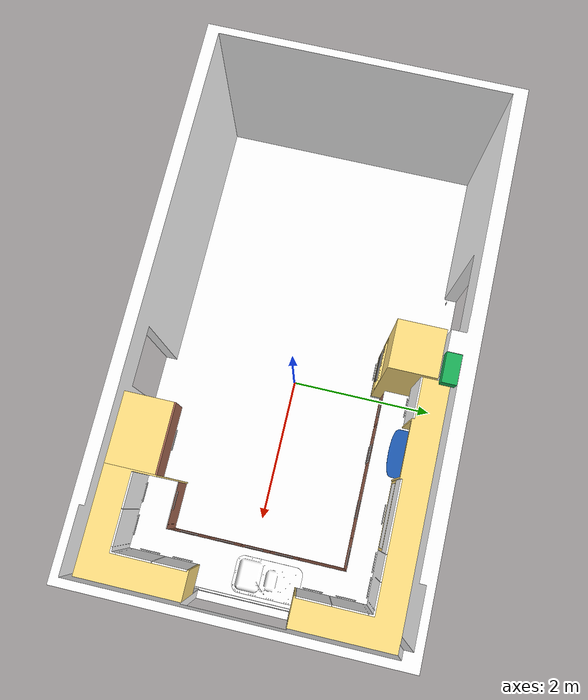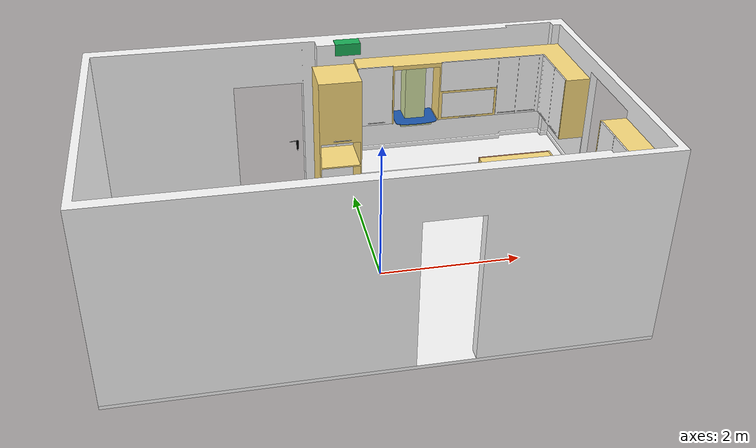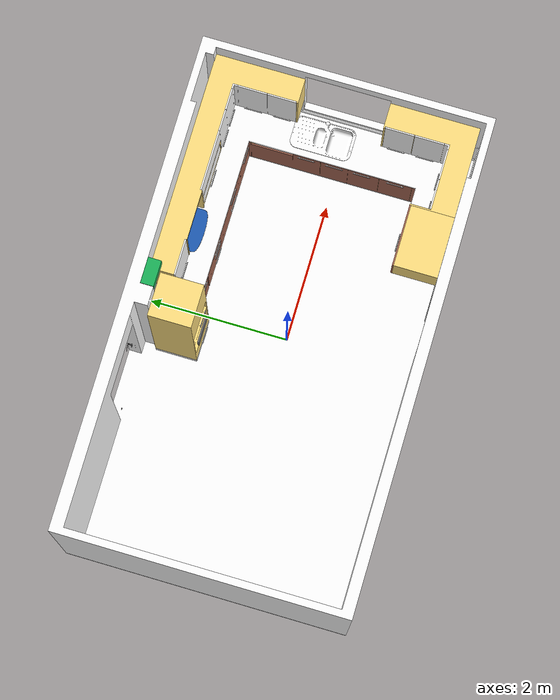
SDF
<sdf version="1.6">
 <world name="default">
  <gravity>0 0 -9.8</gravity>
  <model name="part0.obj">
   <static>1</static>
   <pose>-12.0 -13.9 0 0 0 0</pose>
   <link name="link_d0">
    <inertial>
     <mass>0</mass>
     <inertia>
      <ixx>0.166667</ixx>
      <ixy>0</ixy>
      <ixz>0</ixz>
      <iyy>0.166667</iyy>
      <iyz>0</iyz>
      <izz>0.166667</izz>
     </inertia>
    </inertial>
    <collision concave="yes" name="collision_0">
     <geometry><mesh><scale>.1 .1 .1</scale><uri>fatihrmutfak/part0.obj</uri></mesh></geometry>
    </collision>
    <visual name="visual">
     <geometry><mesh><scale>.1 .1 .1</scale><uri>fatihrmutfak/part0.obj</uri></mesh></geometry>
     <material>
      <ambient>1 0 0 1</ambient>
      <diffuse>0.109800 0.349000 0.694100 1</diffuse>
      <specular>0.1 0.1 0.1 1</specular>
      <emissive>0 0 0 0</emissive>
     </material>
    </visual>
   </link>
  </model>
  <model name="part1.obj">
   <static>1</static>
   <pose>-12.0 -13.9 0 0 0 0</pose>
   <link name="link_d1">
    <inertial>
     <mass>0</mass>
     <inertia>
      <ixx>0.166667</ixx>
      <ixy>0</ixy>
      <ixz>0</ixz>
      <iyy>0.166667</iyy>
      <iyz>0</iyz>
      <izz>0.166667</izz>
     </inertia>
    </inertial>
    <collision concave="yes" name="collision_1">
     <geometry><mesh><scale>.1 .1 .1</scale><uri>fatihrmutfak/part1.obj</uri></mesh></geometry>
    </collision>
    <visual name="visual">
     <geometry><mesh><scale>.1 .1 .1</scale><uri>fatihrmutfak/part1.obj</uri></mesh></geometry>
     <material>
      <ambient>1 0 0 1</ambient>
      <diffuse>0.839200 0.898000 0.651000 1</diffuse>
      <specular>0.1 0.1 0.1 1</specular>
      <emissive>0 0 0 0</emissive>
     </material>
    </visual>
   </link>
  </model>
  <model name="part10.obj">
   <static>1</static>
   <pose>-12.0 -13.9 0 0 0 0</pose>
   <link name="link_d10">
    <inertial>
     <mass>0</mass>
     <inertia>
      <ixx>0.166667</ixx>
      <ixy>0</ixy>
      <ixz>0</ixz>
      <iyy>0.166667</iyy>
      <iyz>0</iyz>
      <izz>0.166667</izz>
     </inertia>
    </inertial>
    <collision concave="yes" name="collision_10">
     <geometry><mesh><scale>.1 .1 .1</scale><uri>fatihrmutfak/part10.obj</uri></mesh></geometry>
    </collision>
    <visual name="visual">
     <geometry><mesh><scale>.1 .1 .1</scale><uri>fatihrmutfak/part10.obj</uri></mesh></geometry>
     <material>
      <ambient>1 0 0 1</ambient>
      <diffuse>0.058800 0.058800 0.058800 1</diffuse>
      <specular>0.1 0.1 0.1 1</specular>
      <emissive>0 0 0 0</emissive>
     </material>
    </visual>
   </link>
  </model>
  <model name="part11.obj">
   <static>1</static>
   <pose>-12.0 -13.9 0 0 0 0</pose>
   <link name="link_d11">
    <inertial>
     <mass>0</mass>
     <inertia>
      <ixx>0.166667</ixx>
      <ixy>0</ixy>
      <ixz>0</ixz>
      <iyy>0.166667</iyy>
      <iyz>0</iyz>
      <izz>0.166667</izz>
     </inertia>
    </inertial>
    <collision concave="yes" name="collision_11">
     <geometry><mesh><scale>.1 .1 .1</scale><uri>fatihrmutfak/part11.obj</uri></mesh></geometry>
    </collision>
    <visual name="visual">
     <geometry><mesh><scale>.1 .1 .1</scale><uri>fatihrmutfak/part11.obj</uri></mesh></geometry>
     <material>
      <ambient>1 0 0 1</ambient>
      <diffuse>0.058800 0.058800 0.058800 1</diffuse>
      <specular>0.1 0.1 0.1 1</specular>
      <emissive>0 0 0 0</emissive>
     </material>
    </visual>
   </link>
  </model>
  <model name="part12.obj">
   <static>1</static>
   <pose>-12.0 -13.9 0 0 0 0</pose>
   <link name="link_d12">
    <inertial>
     <mass>0</mass>
     <inertia>
      <ixx>0.166667</ixx>
      <ixy>0</ixy>
      <ixz>0</ixz>
      <iyy>0.166667</iyy>
      <iyz>0</iyz>
      <izz>0.166667</izz>
     </inertia>
    </inertial>
    <collision concave="yes" name="collision_12">
     <geometry><mesh><scale>.1 .1 .1</scale><uri>fatihrmutfak/part12.obj</uri></mesh></geometry>
    </collision>
    <visual name="visual">
     <geometry><mesh><scale>.1 .1 .1</scale><uri>fatihrmutfak/part12.obj</uri></mesh></geometry>
     <material>
      <ambient>1 0 0 1</ambient>
      <diffuse>0.058800 0.058800 0.058800 1</diffuse>
      <specular>0.1 0.1 0.1 1</specular>
      <emissive>0 0 0 0</emissive>
     </material>
    </visual>
   </link>
  </model>
  <model name="part100.obj">
   <static>1</static>
   <pose>-12.0 -13.9 0 0 0 0</pose>
   <link name="link_d100">
    <inertial>
     <mass>0</mass>
     <inertia>
      <ixx>0.166667</ixx>
      <ixy>0</ixy>
      <ixz>0</ixz>
      <iyy>0.166667</iyy>
      <iyz>0</iyz>
      <izz>0.166667</izz>
     </inertia>
    </inertial>
    <collision concave="yes" name="collision_100">
     <geometry><mesh><scale>.1 .1 .1</scale><uri>fatihrmutfak/part100.obj</uri></mesh></geometry>
    </collision>
    <visual name="visual">
     <geometry><mesh><scale>.1 .1 .1</scale><uri>fatihrmutfak/part100.obj</uri></mesh></geometry>
     <material>
      <ambient>1 0 0 1</ambient>
      <diffuse>0.000000 0.000000 0.000000 1</diffuse>
      <specular>0.1 0.1 0.1 1</specular>
      <emissive>0 0 0 0</emissive>
     </material>
    </visual>
   </link>
  </model>
  <model name="part101.obj">
   <static>1</static>
   <pose>-12.0 -13.9 0 0 0 0</pose>
   <link name="link_d101">
    <inertial>
     <mass>0</mass>
     <inertia>
      <ixx>0.166667</ixx>
      <ixy>0</ixy>
      <ixz>0</ixz>
      <iyy>0.166667</iyy>
      <iyz>0</iyz>
      <izz>0.166667</izz>
     </inertia>
    </inertial>
    <collision concave="yes" name="collision_101">
     <geometry><mesh><scale>.1 .1 .1</scale><uri>fatihrmutfak/part101.obj</uri></mesh></geometry>
    </collision>
    <visual name="visual">
     <geometry><mesh><scale>.1 .1 .1</scale><uri>fatihrmutfak/part101.obj</uri></mesh></geometry>
     <material>
      <ambient>1 0 0 1</ambient>
      <diffuse>0.000000 0.000000 0.000000 1</diffuse>
      <specular>0.1 0.1 0.1 1</specular>
      <emissive>0 0 0 0</emissive>
     </material>
    </visual>
   </link>
  </model>
  <model name="part102.obj">
   <static>1</static>
   <pose>-12.0 -13.9 0 0 0 0</pose>
   <link name="link_d102">
    <inertial>
     <mass>0</mass>
     <inertia>
      <ixx>0.166667</ixx>
      <ixy>0</ixy>
      <ixz>0</ixz>
      <iyy>0.166667</iyy>
      <iyz>0</iyz>
      <izz>0.166667</izz>
     </inertia>
    </inertial>
    <collision concave="yes" name="collision_102">
     <geometry><mesh><scale>.1 .1 .1</scale><uri>fatihrmutfak/part102.obj</uri></mesh></geometry>
    </collision>
    <visual name="visual">
     <geometry><mesh><scale>.1 .1 .1</scale><uri>fatihrmutfak/part102.obj</uri></mesh></geometry>
     <material>
      <ambient>1 0 0 1</ambient>
      <diffuse>0.000000 0.000000 0.000000 1</diffuse>
      <specular>0.1 0.1 0.1 1</specular>
      <emissive>0 0 0 0</emissive>
     </material>
    </visual>
   </link>
  </model>
  <model name="part103.obj">
   <static>1</static>
   <pose>-12.0 -13.9 0 0 0 0</pose>
   <link name="link_d103">
    <inertial>
     <mass>0</mass>
     <inertia>
      <ixx>0.166667</ixx>
      <ixy>0</ixy>
      <ixz>0</ixz>
      <iyy>0.166667</iyy>
      <iyz>0</iyz>
      <izz>0.166667</izz>
     </inertia>
    </inertial>
    <collision concave="yes" name="collision_103">
     <geometry><mesh><scale>.1 .1 .1</scale><uri>fatihrmutfak/part103.obj</uri></mesh></geometry>
    </collision>
    <visual name="visual">
     <geometry><mesh><scale>.1 .1 .1</scale><uri>fatihrmutfak/part103.obj</uri></mesh></geometry>
     <material>
      <ambient>1 0 0 1</ambient>
      <diffuse>0.000000 0.000000 0.000000 1</diffuse>
      <specular>0.1 0.1 0.1 1</specular>
      <emissive>0 0 0 0</emissive>
     </material>
    </visual>
   </link>
  </model>
  <model name="part104.obj">
   <static>1</static>
   <pose>-12.0 -13.9 0 0 0 0</pose>
   <link name="link_d104">
    <inertial>
     <mass>0</mass>
     <inertia>
      <ixx>0.166667</ixx>
      <ixy>0</ixy>
      <ixz>0</ixz>
      <iyy>0.166667</iyy>
      <iyz>0</iyz>
      <izz>0.166667</izz>
     </inertia>
    </inertial>
    <collision concave="yes" name="collision_104">
     <geometry><mesh><scale>.1 .1 .1</scale><uri>fatihrmutfak/part104.obj</uri></mesh></geometry>
    </collision>
    <visual name="visual">
     <geometry><mesh><scale>.1 .1 .1</scale><uri>fatihrmutfak/part104.obj</uri></mesh></geometry>
     <material>
      <ambient>1 0 0 1</ambient>
      <diffuse>0.000000 0.000000 0.000000 1</diffuse>
      <specular>0.1 0.1 0.1 1</specular>
      <emissive>0 0 0 0</emissive>
     </material>
    </visual>
   </link>
  </model>
  <model name="part105.obj">
   <static>1</static>
   <pose>-12.0 -13.9 0 0 0 0</pose>
   <link name="link_d105">
    <inertial>
     <mass>0</mass>
     <inertia>
      <ixx>0.166667</ixx>
      <ixy>0</ixy>
      <ixz>0</ixz>
      <iyy>0.166667</iyy>
      <iyz>0</iyz>
      <izz>0.166667</izz>
     </inertia>
    </inertial>
    <collision concave="yes" name="collision_105">
     <geometry><mesh><scale>.1 .1 .1</scale><uri>fatihrmutfak/part105.obj</uri></mesh></geometry>
    </collision>
    <visual name="visual">
     <geometry><mesh><scale>.1 .1 .1</scale><uri>fatihrmutfak/part105.obj</uri></mesh></geometry>
     <material>
      <ambient>1 0 0 1</ambient>
      <diffuse>0.000000 0.000000 0.000000 1</diffuse>
      <specular>0.1 0.1 0.1 1</specular>
      <emissive>0 0 0 0</emissive>
     </material>
    </visual>
   </link>
  </model>
  <model name="part109.obj">
   <static>1</static>
   <pose>-12.0 -13.9 0 0 0 0</pose>
   <link name="link_d109">
    <inertial>
     <mass>0</mass>
     <inertia>
      <ixx>0.166667</ixx>
      <ixy>0</ixy>
      <ixz>0</ixz>
      <iyy>0.166667</iyy>
      <iyz>0</iyz>
      <izz>0.166667</izz>
     </inertia>
    </inertial>
    <collision concave="yes" name="collision_109">
     <geometry><mesh><scale>.1 .1 .1</scale><uri>fatihrmutfak/part109.obj</uri></mesh></geometry>
    </collision>
    <visual name="visual">
     <geometry><mesh><scale>.1 .1 .1</scale><uri>fatihrmutfak/part109.obj</uri></mesh></geometry>
     <material>
      <ambient>1 0 0 1</ambient>
      <diffuse>1.000000 1.000000 1.000000 1</diffuse>
      <specular>0.1 0.1 0.1 1</specular>
      <emissive>0 0 0 0</emissive>
     </material>
    </visual>
   </link>
  </model>
  <model name="part111.obj">
   <static>1</static>
   <pose>-12.0 -13.9 0 0 0 0</pose>
   <link name="link_d111">
    <inertial>
     <mass>0</mass>
     <inertia>
      <ixx>0.166667</ixx>
      <ixy>0</ixy>
      <ixz>0</ixz>
      <iyy>0.166667</iyy>
      <iyz>0</iyz>
      <izz>0.166667</izz>
     </inertia>
    </inertial>
    <collision concave="yes" name="collision_111">
     <geometry><mesh><scale>.1 .1 .1</scale><uri>fatihrmutfak/part111.obj</uri></mesh></geometry>
    </collision>
    <visual name="visual">
     <geometry><mesh><scale>.1 .1 .1</scale><uri>fatihrmutfak/part111.obj</uri></mesh></geometry>
     <material>
      <ambient>1 0 0 1</ambient>
      <diffuse>1.000000 1.000000 1.000000 1</diffuse>
      <specular>0.1 0.1 0.1 1</specular>
      <emissive>0 0 0 0</emissive>
     </material>
    </visual>
   </link>
  </model>
  <model name="part112.obj">
   <static>1</static>
   <pose>-12.0 -13.9 0 0 0 0</pose>
   <link name="link_d112">
    <inertial>
     <mass>0</mass>
     <inertia>
      <ixx>0.166667</ixx>
      <ixy>0</ixy>
      <ixz>0</ixz>
      <iyy>0.166667</iyy>
      <iyz>0</iyz>
      <izz>0.166667</izz>
     </inertia>
    </inertial>
    <collision concave="yes" name="collision_112">
     <geometry><mesh><scale>.1 .1 .1</scale><uri>fatihrmutfak/part112.obj</uri></mesh></geometry>
    </collision>
    <visual name="visual">
     <geometry><mesh><scale>.1 .1 .1</scale><uri>fatihrmutfak/part112.obj</uri></mesh></geometry>
     <material>
      <ambient>1 0 0 1</ambient>
      <diffuse>1.000000 1.000000 1.000000 1</diffuse>
      <specular>0.1 0.1 0.1 1</specular>
      <emissive>0 0 0 0</emissive>
     </material>
    </visual>
   </link>
  </model>
  <model name="part113.obj">
   <static>1</static>
   <pose>-12.0 -13.9 0 0 0 0</pose>
   <link name="link_d113">
    <inertial>
     <mass>0</mass>
     <inertia>
      <ixx>0.166667</ixx>
      <ixy>0</ixy>
      <ixz>0</ixz>
      <iyy>0.166667</iyy>
      <iyz>0</iyz>
      <izz>0.166667</izz>
     </inertia>
    </inertial>
    <collision concave="yes" name="collision_113">
     <geometry><mesh><scale>.1 .1 .1</scale><uri>fatihrmutfak/part113.obj</uri></mesh></geometry>
    </collision>
    <visual name="visual">
     <geometry><mesh><scale>.1 .1 .1</scale><uri>fatihrmutfak/part113.obj</uri></mesh></geometry>
     <material>
      <ambient>1 0 0 1</ambient>
      <diffuse>1.000000 0.874500 0.498000 1</diffuse>
      <specular>0.1 0.1 0.1 1</specular>
      <emissive>0 0 0 0</emissive>
     </material>
    </visual>
   </link>
  </model>
  <model name="part114.obj">
   <static>1</static>
   <pose>-12.0 -13.9 0 0 0 0</pose>
   <link name="link_d114">
    <inertial>
     <mass>0</mass>
     <inertia>
      <ixx>0.166667</ixx>
      <ixy>0</ixy>
      <ixz>0</ixz>
      <iyy>0.166667</iyy>
      <iyz>0</iyz>
      <izz>0.166667</izz>
     </inertia>
    </inertial>
    <collision concave="yes" name="collision_114">
     <geometry><mesh><scale>.1 .1 .1</scale><uri>fatihrmutfak/part114.obj</uri></mesh></geometry>
    </collision>
    <visual name="visual">
     <geometry><mesh><scale>.1 .1 .1</scale><uri>fatihrmutfak/part114.obj</uri></mesh></geometry>
     <material>
      <ambient>1 0 0 1</ambient>
      <diffuse>0.647100 0.403900 0.321600 1</diffuse>
      <specular>0.1 0.1 0.1 1</specular>
      <emissive>0 0 0 0</emissive>
     </material>
    </visual>
   </link>
  </model>
  <model name="part115.obj">
   <static>1</static>
   <pose>-12.0 -13.9 0 0 0 0</pose>
   <link name="link_d115">
    <inertial>
     <mass>0</mass>
     <inertia>
      <ixx>0.166667</ixx>
      <ixy>0</ixy>
      <ixz>0</ixz>
      <iyy>0.166667</iyy>
      <iyz>0</iyz>
      <izz>0.166667</izz>
     </inertia>
    </inertial>
    <collision concave="yes" name="collision_115">
     <geometry><mesh><scale>.1 .1 .1</scale><uri>fatihrmutfak/part115.obj</uri></mesh></geometry>
    </collision>
    <visual name="visual">
     <geometry><mesh><scale>.1 .1 .1</scale><uri>fatihrmutfak/part115.obj</uri></mesh></geometry>
     <material>
      <ambient>1 0 0 1</ambient>
      <diffuse>1.000000 1.000000 1.000000 1</diffuse>
      <specular>0.1 0.1 0.1 1</specular>
      <emissive>0 0 0 0</emissive>
     </material>
    </visual>
   </link>
  </model>
  <model name="part116.obj">
   <static>1</static>
   <pose>-12.0 -13.9 0 0 0 0</pose>
   <link name="link_d116">
    <inertial>
     <mass>0</mass>
     <inertia>
      <ixx>0.166667</ixx>
      <ixy>0</ixy>
      <ixz>0</ixz>
      <iyy>0.166667</iyy>
      <iyz>0</iyz>
      <izz>0.166667</izz>
     </inertia>
    </inertial>
    <collision concave="yes" name="collision_116">
     <geometry><mesh><scale>.1 .1 .1</scale><uri>fatihrmutfak/part116.obj</uri></mesh></geometry>
    </collision>
    <visual name="visual">
     <geometry><mesh><scale>.1 .1 .1</scale><uri>fatihrmutfak/part116.obj</uri></mesh></geometry>
     <material>
      <ambient>1 0 0 1</ambient>
      <diffuse>1.000000 0.874500 0.498000 1</diffuse>
      <specular>0.1 0.1 0.1 1</specular>
      <emissive>0 0 0 0</emissive>
     </material>
    </visual>
   </link>
  </model>
  <model name="part117.obj">
   <static>1</static>
   <pose>-12.0 -13.9 0 0 0 0</pose>
   <link name="link_d117">
    <inertial>
     <mass>0</mass>
     <inertia>
      <ixx>0.166667</ixx>
      <ixy>0</ixy>
      <ixz>0</ixz>
      <iyy>0.166667</iyy>
      <iyz>0</iyz>
      <izz>0.166667</izz>
     </inertia>
    </inertial>
    <collision concave="yes" name="collision_117">
     <geometry><mesh><scale>.1 .1 .1</scale><uri>fatihrmutfak/part117.obj</uri></mesh></geometry>
    </collision>
    <visual name="visual">
     <geometry><mesh><scale>.1 .1 .1</scale><uri>fatihrmutfak/part117.obj</uri></mesh></geometry>
     <material>
      <ambient>1 0 0 1</ambient>
      <diffuse>1.000000 1.000000 1.000000 1</diffuse>
      <specular>0.1 0.1 0.1 1</specular>
      <emissive>0 0 0 0</emissive>
     </material>
    </visual>
   </link>
  </model>
  <model name="part118.obj">
   <static>1</static>
   <pose>-12.0 -13.9 0 0 0 0</pose>
   <link name="link_d118">
    <inertial>
     <mass>0</mass>
     <inertia>
      <ixx>0.166667</ixx>
      <ixy>0</ixy>
      <ixz>0</ixz>
      <iyy>0.166667</iyy>
      <iyz>0</iyz>
      <izz>0.166667</izz>
     </inertia>
    </inertial>
    <collision concave="yes" name="collision_118">
     <geometry><mesh><scale>.1 .1 .1</scale><uri>fatihrmutfak/part118.obj</uri></mesh></geometry>
    </collision>
    <visual name="visual">
     <geometry><mesh><scale>.1 .1 .1</scale><uri>fatihrmutfak/part118.obj</uri></mesh></geometry>
     <material>
      <ambient>1 0 0 1</ambient>
      <diffuse>1.000000 1.000000 1.000000 1</diffuse>
      <specular>0.1 0.1 0.1 1</specular>
      <emissive>0 0 0 0</emissive>
     </material>
    </visual>
   </link>
  </model>
  <model name="part119.obj">
   <static>1</static>
   <pose>-12.0 -13.9 0 0 0 0</pose>
   <link name="link_d119">
    <inertial>
     <mass>0</mass>
     <inertia>
      <ixx>0.166667</ixx>
      <ixy>0</ixy>
      <ixz>0</ixz>
      <iyy>0.166667</iyy>
      <iyz>0</iyz>
      <izz>0.166667</izz>
     </inertia>
    </inertial>
    <collision concave="yes" name="collision_119">
     <geometry><mesh><scale>.1 .1 .1</scale><uri>fatihrmutfak/part119.obj</uri></mesh></geometry>
    </collision>
    <visual name="visual">
     <geometry><mesh><scale>.1 .1 .1</scale><uri>fatihrmutfak/part119.obj</uri></mesh></geometry>
     <material>
      <ambient>1 0 0 1</ambient>
      <diffuse>0.647100 0.403900 0.321600 1</diffuse>
      <specular>0.1 0.1 0.1 1</specular>
      <emissive>0 0 0 0</emissive>
     </material>
    </visual>
   </link>
  </model>
  <model name="part120.obj">
   <static>1</static>
   <pose>-12.0 -13.9 0 0 0 0</pose>
   <link name="link_d120">
    <inertial>
     <mass>0</mass>
     <inertia>
      <ixx>0.166667</ixx>
      <ixy>0</ixy>
      <ixz>0</ixz>
      <iyy>0.166667</iyy>
      <iyz>0</iyz>
      <izz>0.166667</izz>
     </inertia>
    </inertial>
    <collision concave="yes" name="collision_120">
     <geometry><mesh><scale>.1 .1 .1</scale><uri>fatihrmutfak/part120.obj</uri></mesh></geometry>
    </collision>
    <visual name="visual">
     <geometry><mesh><scale>.1 .1 .1</scale><uri>fatihrmutfak/part120.obj</uri></mesh></geometry>
     <material>
      <ambient>1 0 0 1</ambient>
      <diffuse>1.000000 1.000000 1.000000 1</diffuse>
      <specular>0.1 0.1 0.1 1</specular>
      <emissive>0 0 0 0</emissive>
     </material>
    </visual>
   </link>
  </model>
  <model name="part121.obj">
   <static>1</static>
   <pose>-12.0 -13.9 0 0 0 0</pose>
   <link name="link_d121">
    <inertial>
     <mass>0</mass>
     <inertia>
      <ixx>0.166667</ixx>
      <ixy>0</ixy>
      <ixz>0</ixz>
      <iyy>0.166667</iyy>
      <iyz>0</iyz>
      <izz>0.166667</izz>
     </inertia>
    </inertial>
    <collision concave="yes" name="collision_121">
     <geometry><mesh><scale>.1 .1 .1</scale><uri>fatihrmutfak/part121.obj</uri></mesh></geometry>
    </collision>
    <visual name="visual">
     <geometry><mesh><scale>.1 .1 .1</scale><uri>fatihrmutfak/part121.obj</uri></mesh></geometry>
     <material>
      <ambient>1 0 0 1</ambient>
      <diffuse>1.000000 1.000000 1.000000 1</diffuse>
      <specular>0.1 0.1 0.1 1</specular>
      <emissive>0 0 0 0</emissive>
     </material>
    </visual>
   </link>
  </model>
  <model name="part122.obj">
   <static>1</static>
   <pose>-12.0 -13.9 0 0 0 0</pose>
   <link name="link_d122">
    <inertial>
     <mass>0</mass>
     <inertia>
      <ixx>0.166667</ixx>
      <ixy>0</ixy>
      <ixz>0</ixz>
      <iyy>0.166667</iyy>
      <iyz>0</iyz>
      <izz>0.166667</izz>
     </inertia>
    </inertial>
    <collision concave="yes" name="collision_122">
     <geometry><mesh><scale>.1 .1 .1</scale><uri>fatihrmutfak/part122.obj</uri></mesh></geometry>
    </collision>
    <visual name="visual">
     <geometry><mesh><scale>.1 .1 .1</scale><uri>fatihrmutfak/part122.obj</uri></mesh></geometry>
     <material>
      <ambient>1 0 0 1</ambient>
      <diffuse>1.000000 1.000000 1.000000 1</diffuse>
      <specular>0.1 0.1 0.1 1</specular>
      <emissive>0 0 0 0</emissive>
     </material>
    </visual>
   </link>
  </model>
  <model name="part123.obj">
   <static>1</static>
   <pose>-12.0 -13.9 0 0 0 0</pose>
   <link name="link_d123">
    <inertial>
     <mass>0</mass>
     <inertia>
      <ixx>0.166667</ixx>
      <ixy>0</ixy>
      <ixz>0</ixz>
      <iyy>0.166667</iyy>
      <iyz>0</iyz>
      <izz>0.166667</izz>
     </inertia>
    </inertial>
    <collision concave="yes" name="collision_123">
     <geometry><mesh><scale>.1 .1 .1</scale><uri>fatihrmutfak/part123.obj</uri></mesh></geometry>
    </collision>
    <visual name="visual">
     <geometry><mesh><scale>.1 .1 .1</scale><uri>fatihrmutfak/part123.obj</uri></mesh></geometry>
     <material>
      <ambient>1 0 0 1</ambient>
      <diffuse>1.000000 1.000000 1.000000 1</diffuse>
      <specular>0.1 0.1 0.1 1</specular>
      <emissive>0 0 0 0</emissive>
     </material>
    </visual>
   </link>
  </model>
  <model name="part124.obj">
   <static>1</static>
   <pose>-12.0 -13.9 0 0 0 0</pose>
   <link name="link_d124">
    <inertial>
     <mass>0</mass>
     <inertia>
      <ixx>0.166667</ixx>
      <ixy>0</ixy>
      <ixz>0</ixz>
      <iyy>0.166667</iyy>
      <iyz>0</iyz>
      <izz>0.166667</izz>
     </inertia>
    </inertial>
    <collision concave="yes" name="collision_124">
     <geometry><mesh><scale>.1 .1 .1</scale><uri>fatihrmutfak/part124.obj</uri></mesh></geometry>
    </collision>
    <visual name="visual">
     <geometry><mesh><scale>.1 .1 .1</scale><uri>fatihrmutfak/part124.obj</uri></mesh></geometry>
     <material>
      <ambient>1 0 0 1</ambient>
      <diffuse>1.000000 1.000000 1.000000 1</diffuse>
      <specular>0.1 0.1 0.1 1</specular>
      <emissive>0 0 0 0</emissive>
     </material>
    </visual>
   </link>
  </model>
  <model name="part125.obj">
   <static>1</static>
   <pose>-12.0 -13.9 0 0 0 0</pose>
   <link name="link_d125">
    <inertial>
     <mass>0</mass>
     <inertia>
      <ixx>0.166667</ixx>
      <ixy>0</ixy>
      <ixz>0</ixz>
      <iyy>0.166667</iyy>
      <iyz>0</iyz>
      <izz>0.166667</izz>
     </inertia>
    </inertial>
    <collision concave="yes" name="collision_125">
     <geometry><mesh><scale>.1 .1 .1</scale><uri>fatihrmutfak/part125.obj</uri></mesh></geometry>
    </collision>
    <visual name="visual">
     <geometry><mesh><scale>.1 .1 .1</scale><uri>fatihrmutfak/part125.obj</uri></mesh></geometry>
     <material>
      <ambient>1 0 0 1</ambient>
      <diffuse>0.102000 0.694100 0.345100 1</diffuse>
      <specular>0.1 0.1 0.1 1</specular>
      <emissive>0 0 0 0</emissive>
     </material>
    </visual>
   </link>
  </model>
  <model name="part126.obj">
   <static>1</static>
   <pose>-12.0 -13.9 0 0 0 0</pose>
   <link name="link_d126">
    <inertial>
     <mass>0</mass>
     <inertia>
      <ixx>0.166667</ixx>
      <ixy>0</ixy>
      <ixz>0</ixz>
      <iyy>0.166667</iyy>
      <iyz>0</iyz>
      <izz>0.166667</izz>
     </inertia>
    </inertial>
    <collision concave="yes" name="collision_126">
     <geometry><mesh><scale>.1 .1 .1</scale><uri>fatihrmutfak/part126.obj</uri></mesh></geometry>
    </collision>
    <visual name="visual">
     <geometry><mesh><scale>.1 .1 .1</scale><uri>fatihrmutfak/part126.obj</uri></mesh></geometry>
     <material>
      <ambient>1 0 0 1</ambient>
      <diffuse>0.451000 0.451000 0.451000 1</diffuse>
      <specular>0.1 0.1 0.1 1</specular>
      <emissive>0 0 0 0</emissive>
     </material>
    </visual>
   </link>
  </model>
 </world>
</sdf>
